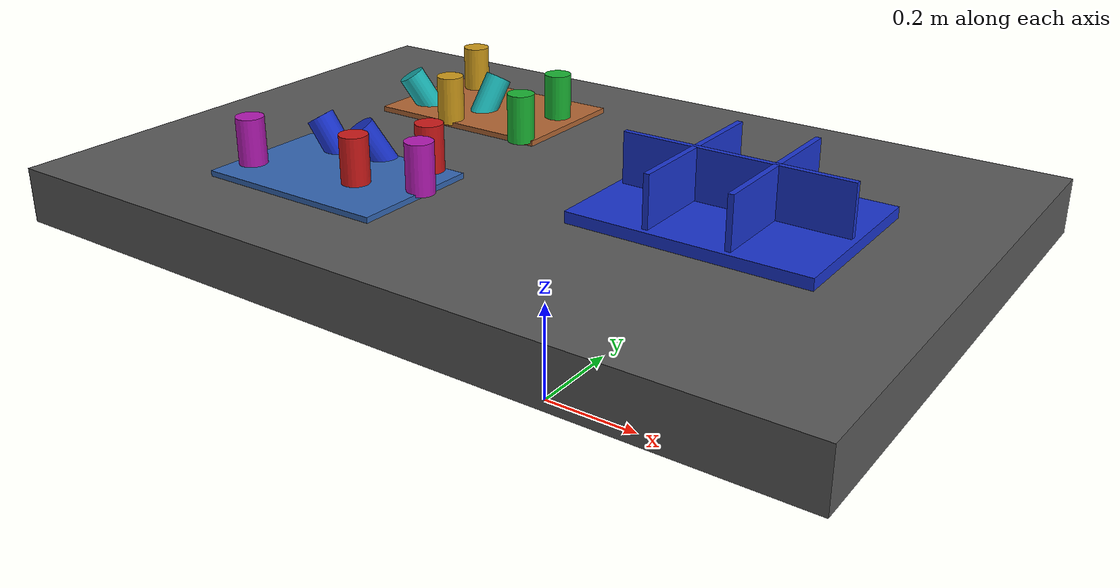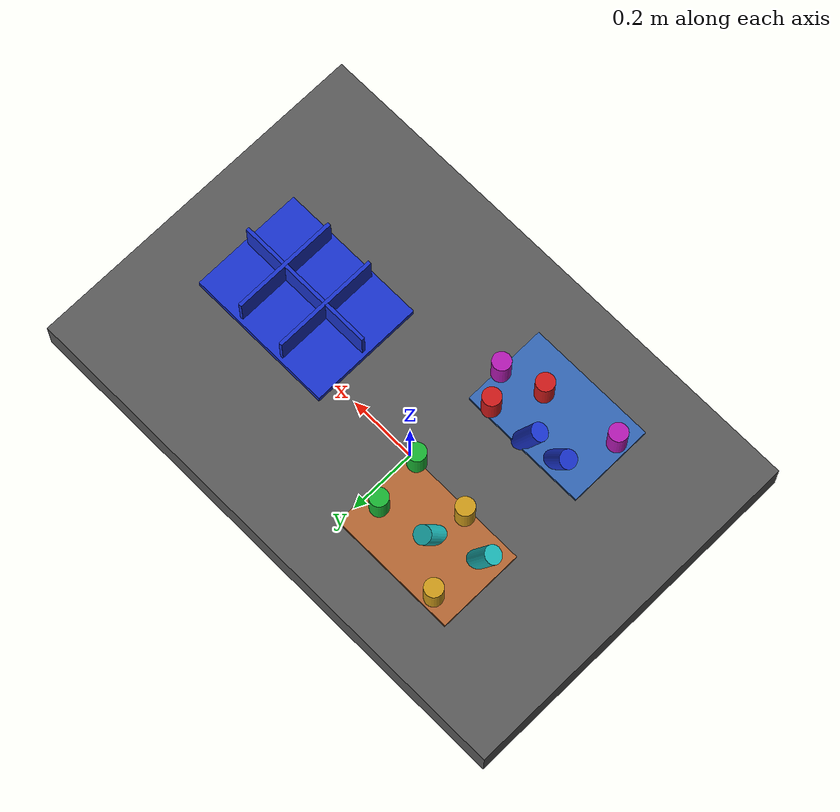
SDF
<?xml version="1.0" ?>
<sdf version="1.9">
  <!-- Standalone M1B scene.  The controller-backed Panda is spawned by the
       existing launch path; this file never alters the frozen M1A cube world. -->
  <world name="industrial_cylinder_v1">
    <physics name="bullet" type="bullet"><max_step_size>0.001</max_step_size><real_time_factor>1.0</real_time_factor></physics>
    <plugin name="gz::sim::systems::Physics" filename="gz-sim-physics-system"><engine><filename>gz-physics-bullet-featherstone-plugin</filename></engine></plugin>
    <plugin name="gz::sim::systems::UserCommands" filename="gz-sim-user-commands-system"/>
    <plugin name="gz::sim::systems::SceneBroadcaster" filename="gz-sim-scene-broadcaster-system"/>
    <plugin name="gz::sim::systems::Sensors" filename="gz-sim-sensors-system"><render_engine>ogre2</render_engine></plugin>
    <gravity>0 0 -9.81</gravity>
    <light type="directional" name="industrial_light"><pose>0 0 5 0 0 0</pose><direction>-0.3 0.2 -0.9</direction><diffuse>0.9 0.9 0.9 1</diffuse></light>
    <model name="industrial_work_table"><static>true</static><link name="link"><pose>0 0 0.4 0 0 0</pose><collision name="collision"><geometry><box><size>1.5 1.0 0.1</size></box></geometry></collision><visual name="visual"><geometry><box><size>1.5 1.0 0.1</size></box></geometry><material><diffuse>0.35 0.35 0.35 1</diffuse></material></visual></link></model>
    <model name="camera_fixture"><static>true</static><link name="camera_rgbd"><pose>-0.80 -0.80 1.40 0 0.77 0.93</pose><sensor name="front_rgbd" type="rgbd_camera"><always_on>1</always_on><update_rate>15</update_rate><topic>/xh/camera/rgbd</topic><camera><horizontal_fov>1.047</horizontal_fov><image><width>640</width><height>480</height><format>R8G8B8</format></image><clip><near>0.1</near><far>4.0</far></clip></camera></sensor></link></model>
    <model name="incoming_zone_a"><static>true</static><link name="link"><pose>-0.28 -0.22 0.455 0 0 0</pose><visual name="visual"><geometry><box><size>0.36 0.24 0.01</size></box></geometry><material><diffuse>0.2 0.4 0.7 1</diffuse></material></visual></link></model>
    <model name="incoming_zone_b"><static>true</static><link name="link"><pose>-0.28 0.22 0.455 0 0 0</pose><visual name="visual"><geometry><box><size>0.36 0.24 0.01</size></box></geometry><material><diffuse>0.7 0.4 0.2 1</diffuse></material></visual></link></model>
    <!-- M1B_RANDOM_PARTS_BEGIN -->
    <model name="cylinder_01"><pose>-0.2191 -0.2371 0.5000 0.0000 0.0000 2.8833</pose><link name="link"><inertial><mass>0.06</mass></inertial><collision name="collision"><geometry><cylinder><radius>0.025</radius><length>0.09</length></cylinder></geometry></collision><visual name="visual"><geometry><cylinder><radius>0.025</radius><length>0.09</length></cylinder></geometry><material><diffuse>0.800 0.100 0.100 1</diffuse><specular>0.15 0.15 0.15 1</specular></material></visual></link></model>
    <model name="cylinder_02"><pose>-0.1441 0.2460 0.5000 3.1416 0.0000 -2.6844</pose><link name="link"><inertial><mass>0.06</mass></inertial><collision name="collision"><geometry><cylinder><radius>0.025</radius><length>0.09</length></cylinder></geometry></collision><visual name="visual"><geometry><cylinder><radius>0.025</radius><length>0.09</length></cylinder></geometry><material><diffuse>0.100 0.700 0.200 1</diffuse><specular>0.15 0.15 0.15 1</specular></material></visual></link></model>
    <model name="cylinder_03"><pose>-0.2755 -0.1294 0.4800 0.4500 -0.3000 -0.2707</pose><link name="link"><inertial><mass>0.06</mass></inertial><collision name="collision"><geometry><cylinder><radius>0.025</radius><length>0.09</length></cylinder></geometry></collision><visual name="visual"><geometry><cylinder><radius>0.025</radius><length>0.09</length></cylinder></geometry><material><diffuse>0.100 0.200 0.800 1</diffuse><specular>0.15 0.15 0.15 1</specular></material></visual></link></model>
    <model name="cylinder_04"><pose>-0.3033 0.1173 0.5000 0.0000 0.0000 -0.5899</pose><link name="link"><inertial><mass>0.06</mass></inertial><collision name="collision"><geometry><cylinder><radius>0.025</radius><length>0.09</length></cylinder></geometry></collision><visual name="visual"><geometry><cylinder><radius>0.025</radius><length>0.09</length></cylinder></geometry><material><diffuse>0.800 0.600 0.100 1</diffuse><specular>0.15 0.15 0.15 1</specular></material></visual></link></model>
    <model name="cylinder_05"><pose>-0.1088 -0.2003 0.5000 3.1416 0.0000 -2.5188</pose><link name="link"><inertial><mass>0.06</mass></inertial><collision name="collision"><geometry><cylinder><radius>0.025</radius><length>0.09</length></cylinder></geometry></collision><visual name="visual"><geometry><cylinder><radius>0.025</radius><length>0.09</length></cylinder></geometry><material><diffuse>0.700 0.100 0.700 1</diffuse><specular>0.15 0.15 0.15 1</specular></material></visual></link></model>
    <model name="cylinder_06"><pose>-0.2831 0.2111 0.4800 0.4500 -0.3000 -2.8881</pose><link name="link"><inertial><mass>0.06</mass></inertial><collision name="collision"><geometry><cylinder><radius>0.025</radius><length>0.09</length></cylinder></geometry></collision><visual name="visual"><geometry><cylinder><radius>0.025</radius><length>0.09</length></cylinder></geometry><material><diffuse>0.100 0.700 0.700 1</diffuse><specular>0.15 0.15 0.15 1</specular></material></visual></link></model>
    <model name="cylinder_07"><pose>-0.1551 -0.1204 0.5000 0.0000 0.0000 -1.5938</pose><link name="link"><inertial><mass>0.06</mass></inertial><collision name="collision"><geometry><cylinder><radius>0.025</radius><length>0.09</length></cylinder></geometry></collision><visual name="visual"><geometry><cylinder><radius>0.025</radius><length>0.09</length></cylinder></geometry><material><diffuse>0.800 0.100 0.100 1</diffuse><specular>0.15 0.15 0.15 1</specular></material></visual></link></model>
    <model name="cylinder_08"><pose>-0.1277 0.1042 0.5000 3.1416 0.0000 -2.2622</pose><link name="link"><inertial><mass>0.06</mass></inertial><collision name="collision"><geometry><cylinder><radius>0.025</radius><length>0.09</length></cylinder></geometry></collision><visual name="visual"><geometry><cylinder><radius>0.025</radius><length>0.09</length></cylinder></geometry><material><diffuse>0.100 0.700 0.200 1</diffuse><specular>0.15 0.15 0.15 1</specular></material></visual></link></model>
    <model name="cylinder_09"><pose>-0.3657 -0.1396 0.4800 0.4500 -0.3000 -0.7907</pose><link name="link"><inertial><mass>0.06</mass></inertial><collision name="collision"><geometry><cylinder><radius>0.025</radius><length>0.09</length></cylinder></geometry></collision><visual name="visual"><geometry><cylinder><radius>0.025</radius><length>0.09</length></cylinder></geometry><material><diffuse>0.100 0.200 0.800 1</diffuse><specular>0.15 0.15 0.15 1</specular></material></visual></link></model>
    <model name="cylinder_10"><pose>-0.3915 0.3094 0.5000 0.0000 0.0000 -2.5670</pose><link name="link"><inertial><mass>0.06</mass></inertial><collision name="collision"><geometry><cylinder><radius>0.025</radius><length>0.09</length></cylinder></geometry></collision><visual name="visual"><geometry><cylinder><radius>0.025</radius><length>0.09</length></cylinder></geometry><material><diffuse>0.800 0.600 0.100 1</diffuse><specular>0.15 0.15 0.15 1</specular></material></visual></link></model>
    <model name="cylinder_11"><pose>-0.4294 -0.2709 0.5000 3.1416 0.0000 -1.9368</pose><link name="link"><inertial><mass>0.06</mass></inertial><collision name="collision"><geometry><cylinder><radius>0.025</radius><length>0.09</length></cylinder></geometry></collision><visual name="visual"><geometry><cylinder><radius>0.025</radius><length>0.09</length></cylinder></geometry><material><diffuse>0.700 0.100 0.700 1</diffuse><specular>0.15 0.15 0.15 1</specular></material></visual></link></model>
    <model name="cylinder_12"><pose>-0.4097 0.1619 0.4800 0.4500 -0.3000 -0.4126</pose><link name="link"><inertial><mass>0.06</mass></inertial><collision name="collision"><geometry><cylinder><radius>0.025</radius><length>0.09</length></cylinder></geometry></collision><visual name="visual"><geometry><cylinder><radius>0.025</radius><length>0.09</length></cylinder></geometry><material><diffuse>0.100 0.700 0.700 1</diffuse><specular>0.15 0.15 0.15 1</specular></material></visual></link></model>
    <!-- M1B_RANDOM_PARTS_END -->
    <model name="blue_partition_bin"><static>true</static><pose>0.36 0 0.45 0 0 0</pose><link name="link"><collision name="floor"><pose>0 0 0.01 0 0 0</pose><geometry><box><size>0.42 0.32 0.02</size></box></geometry></collision><visual name="floor_visual"><pose>0 0 0.01 0 0 0</pose><geometry><box><size>0.42 0.32 0.02</size></box></geometry><material><diffuse>0.1 0.2 0.8 1</diffuse></material></visual><visual name="row_divider"><pose>0 0 0.06 0 0 0</pose><geometry><box><size>0.40 0.01 0.10</size></box></geometry><material><diffuse>0.1 0.2 0.8 1</diffuse></material></visual><visual name="col_divider_a"><pose>-0.07 0 0.06 0 0 0</pose><geometry><box><size>0.01 0.30 0.10</size></box></geometry><material><diffuse>0.1 0.2 0.8 1</diffuse></material></visual><visual name="col_divider_b"><pose>0.07 0 0.06 0 0 0</pose><geometry><box><size>0.01 0.30 0.10</size></box></geometry><material><diffuse>0.1 0.2 0.8 1</diffuse></material></visual></link></model>
    <!-- Reserved only: second table, bin transport corridor, stackable-bin
         collision volume, and second arm mounting namespace. -->
  </world>
</sdf>
